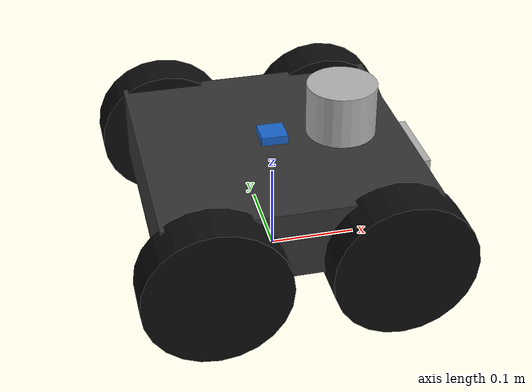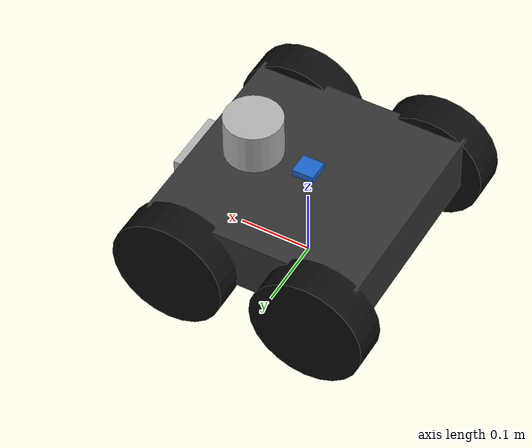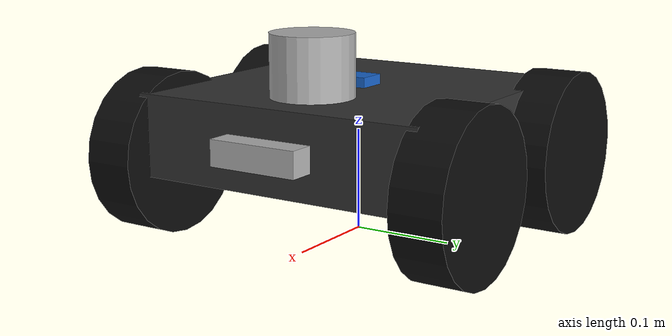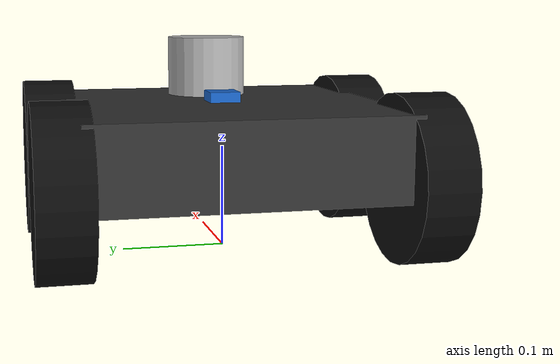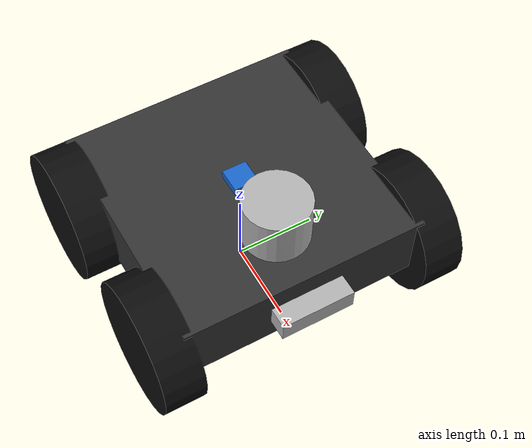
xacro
<?xml version="1.0"?>
<robot name="roboranger" xmlns:xacro="http://www.ros.org/wiki/xacro">

  <!-- ── Materials ───────────────────────────────────────────── -->
  <material name="dark_grey">
    <color rgba="0.2 0.2 0.2 1.0"/>
  </material>
  <material name="black">
    <color rgba="0.05 0.05 0.05 1.0"/>
  </material>
  <material name="silver">
    <color rgba="0.7 0.7 0.7 1.0"/>
  </material>
  <material name="blue">
    <color rgba="0.1 0.4 0.8 1.0"/>
  </material>

  <!-- ── Inertia helpers ─────────────────────────────────────── -->
  <xacro:macro name="box_inertia" params="m l w h">
    <inertial>
      <mass value="${m}"/>
      <inertia ixx="${m*(w*w+h*h)/12}" ixy="0" ixz="0"
               iyy="${m*(l*l+h*h)/12}" iyz="0"
               izz="${m*(l*l+w*w)/12}"/>
    </inertial>
  </xacro:macro>

  <xacro:macro name="cylinder_inertia" params="m r l">
    <inertial>
      <mass value="${m}"/>
      <inertia ixx="${m*(3*r*r+l*l)/12}" ixy="0" ixz="0"
               iyy="${m*(3*r*r+l*l)/12}" iyz="0"
               izz="${m*r*r/2}"/>
    </inertial>
  </xacro:macro>

  <!-- ── Dimensions ─────────────────────────────────────────── -->
  <xacro:property name="chassis_l"  value="0.30"/>
  <xacro:property name="chassis_w"  value="0.30"/>
  <xacro:property name="chassis_h"  value="0.08"/>
  <xacro:property name="chassis_z"  value="0.105"/> <!-- centre height above ground -->

  <xacro:property name="wheel_r"    value="0.08"/>
  <xacro:property name="wheel_w"    value="0.05"/>
  <!-- wheel centre positions relative to base_link -->
  <xacro:property name="wheel_x"    value="0.10"/>  <!-- half wheelbase -->
  <xacro:property name="wheel_y"    value="0.165"/> <!-- half track -->
  <xacro:property name="wheel_z"    value="${wheel_r - chassis_z}"/> <!-- below chassis centre -->

  <!-- ── base_footprint ─────────────────────────────────────── -->
  <link name="base_footprint"/>

  <joint name="base_footprint_joint" type="fixed">
    <parent link="base_footprint"/>
    <child  link="base_link"/>
    <origin xyz="0 0 ${chassis_z}" rpy="0 0 0"/>
  </joint>

  <!-- ── Chassis (base_link) ────────────────────────────────── -->
  <link name="base_link">
    <visual>
      <geometry>
        <box size="${chassis_l} ${chassis_w} ${chassis_h}"/>
      </geometry>
      <material name="dark_grey"/>
    </visual>
    <collision>
      <geometry>
        <box size="${chassis_l} ${chassis_w} ${chassis_h}"/>
      </geometry>
    </collision>
    <xacro:box_inertia m="5.0" l="${chassis_l}" w="${chassis_w}" h="${chassis_h}"/>
  </link>

  <!-- ── Wheel macro ────────────────────────────────────────── -->
  <xacro:macro name="mecanum_wheel" params="name x_sign y_sign">
    <link name="wheel_${name}_link">
      <visual>
        <!-- cylinder default axis is Z; rotate 90° around X to align axle with Y -->
        <origin xyz="0 0 0" rpy="${pi/2} 0 0"/>
        <geometry>
          <cylinder radius="${wheel_r}" length="${wheel_w}"/>
        </geometry>
        <material name="black"/>
      </visual>
      <collision>
        <origin xyz="0 0 0" rpy="${pi/2} 0 0"/>
        <geometry>
          <cylinder radius="${wheel_r}" length="${wheel_w}"/>
        </geometry>
      </collision>
      <xacro:cylinder_inertia m="0.5" r="${wheel_r}" l="${wheel_w}"/>
    </link>

    <joint name="wheel_${name}_joint" type="continuous">
      <parent link="base_link"/>
      <child  link="wheel_${name}_link"/>
      <origin xyz="${x_sign * wheel_x} ${y_sign * wheel_y} ${wheel_z}" rpy="0 0 0"/>
      <axis xyz="0 1 0"/>
    </joint>
  </xacro:macro>

  <!-- FL=front-left, FR=front-right, RL=rear-left, RR=rear-right -->
  <!-- In ROS: +x=forward, +y=left                                  -->
  <xacro:mecanum_wheel name="fl" x_sign=" 1" y_sign=" 1"/>
  <xacro:mecanum_wheel name="fr" x_sign=" 1" y_sign="-1"/>
  <xacro:mecanum_wheel name="rl" x_sign="-1" y_sign=" 1"/>
  <xacro:mecanum_wheel name="rr" x_sign="-1" y_sign="-1"/>

  <!-- ── IMU ───────────────────────────────────────────────── -->
  <link name="imu_link">
    <visual>
      <geometry>
        <box size="0.03 0.03 0.01"/>
      </geometry>
      <material name="blue"/>
    </visual>
    <xacro:box_inertia m="0.02" l="0.03" w="0.03" h="0.01"/>
  </link>

  <joint name="imu_joint" type="fixed">
    <parent link="base_link"/>
    <child  link="imu_link"/>
    <!-- mounted flat on top surface, at chassis centre -->
    <origin xyz="0 0 ${chassis_h/2 + 0.005}" rpy="0 0 0"/>
  </joint>

  <!-- ── RPLidar A1 ─────────────────────────────────────────── -->
  <link name="lidar_link">
    <visual>
      <geometry>
        <cylinder radius="0.04" length="0.06"/>
      </geometry>
      <material name="silver"/>
    </visual>
    <xacro:cylinder_inertia m="0.18" r="0.04" l="0.06"/>
  </link>

  <joint name="lidar_joint" type="fixed">
    <parent link="base_link"/>
    <child  link="lidar_link"/>
    <!-- top plate, offset toward the front -->
    <origin xyz="0.08 0 ${chassis_h/2 + 0.03}" rpy="0 0 0"/>
  </joint>

  <!-- ── Intel D435i Camera ─────────────────────────────────── -->
  <link name="camera_link">
    <visual>
      <geometry>
        <box size="0.025 0.09 0.025"/>
      </geometry>
      <material name="silver"/>
    </visual>
    <xacro:box_inertia m="0.072" l="0.025" w="0.09" h="0.025"/>
  </link>

  <joint name="camera_joint" type="fixed">
    <parent link="base_link"/>
    <child  link="camera_link"/>
    <!-- mounted on front face, vertically centred -->
    <origin xyz="${chassis_l/2 + 0.0125} 0 0" rpy="0 0 0"/>
  </joint>

</robot>
